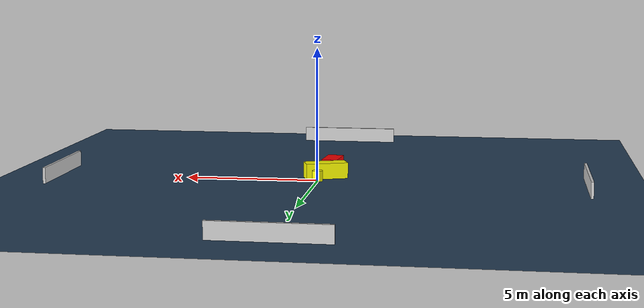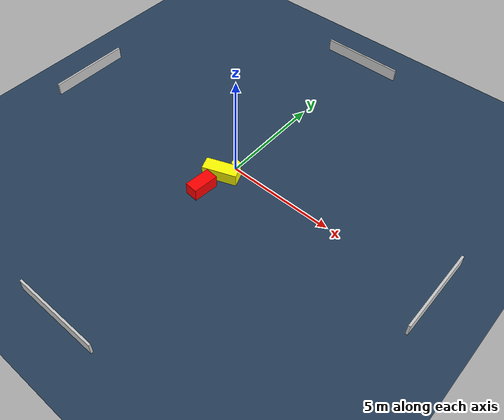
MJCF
<?xml version="1.0" ?>
<mujoco model="generated_environment">
  <option timestep="0.01" integrator="RK4" cone="elliptic"/>
  <default>
    <geom density="1"/>
  </default>
  <asset>
    <texture builtin="gradient" height="3072" name="skybox" rgb1="0.3 0.5 0.7" rgb2="0 0 0" type="skybox" width="512"/>
    <texture builtin="checker" height="300" name="groundplane" rgb1="0.2 0.3 0.4" rgb2="0.1 0.2 0.3" type="2d" width="300"/>
    <material name="groundplane" reflectance="0.2" texrepeat="5 5" texture="groundplane"/>
  </asset>
  <worldbody>
    <light dir="0 0 -1" directional="true" pos="0 0 1.5"/>
    <geom condim="3" friction="0.5 0.005 0.001" material="groundplane" name="floor" pos="0 0 0" size="0 0 0.05" type="plane"/>
    <body name="walls">
      <geom name="wall_1" condim="4" pos="-10.0 0.0 0.3" rgba="0.800000011920929 0.800000011920929 0.800000011920929 1.0" size="0.05 2.0 0.3" type="box"/>
      <geom name="wall_2" condim="4" pos="10.0 0.0 0.3" rgba="0.800000011920929 0.800000011920929 0.800000011920929 1.0" size="0.05 2.0 0.3" type="box"/>
      <geom name="wall_3" condim="4" pos="0.0 -10.0 0.3" rgba="0.800000011920929 0.800000011920929 0.800000011920929 1.0" size="2.0 0.05 0.3" type="box"/>
      <geom name="wall_4" condim="4" pos="0.0 10.0 0.3" rgba="0.800000011920929 0.800000011920929 0.800000011920929 1.0" size="2.0 0.05 0.3" type="box"/>
    </body>
    <body name="robot">
      <joint name="joint_x" type="slide" pos="0 0 0" axis="1 0 0"/>
      <joint name="joint_y" type="slide" pos="0 0 0" axis="0 1 0"/>
      <geom name="robot" type="cylinder" pos="0.0 0.0 0.2" size="0.2 0.2 0.0" mass="5.0" friction="1.0 0.005 0.0001" condim="4" rgba="1.0 1.0 0.0 1.0"/>
    </body>
    <body name="obstacle_1_movable">
      <geom name="obstacle_1_movable" condim="4" pos="-0.20110835276122405 -0.7372253984171977 0.3" euler="0 0 20.643243596341723" friction="0.0 0.005 0.001" rgba="1.0 1.0 0.0 1.0" size="0.7992063582935836 0.32002313824376916 0.3" type="box" mass="0.1"/>
      <joint type="free"/>
    </body>
    <body name="obstacle_2_static">
      <geom name="obstacle_2_static" condim="4" pos="-0.32543348116870013 -1.8767204956767207 0.3" euler="0 0 354.71977999790784" friction="0.0 0.005 0.001" rgba="1.0 0.0 0.0 1.0" size="0.3045173803515317 0.6051147147895419 0.3" type="box"/>
    </body>
  </worldbody>
  <actuator>
    <motor name="actuator_x" joint="joint_x" gear="1" ctrlrange="-1 1"/>
    <motor name="actuator_y" joint="joint_y" gear="1" ctrlrange="-1 1"/>
  </actuator>
</mujoco>
